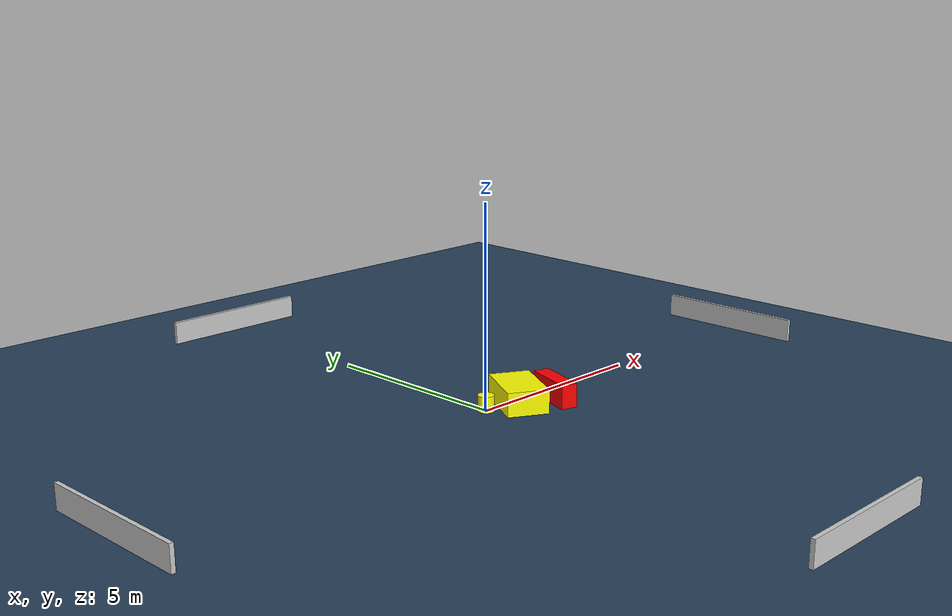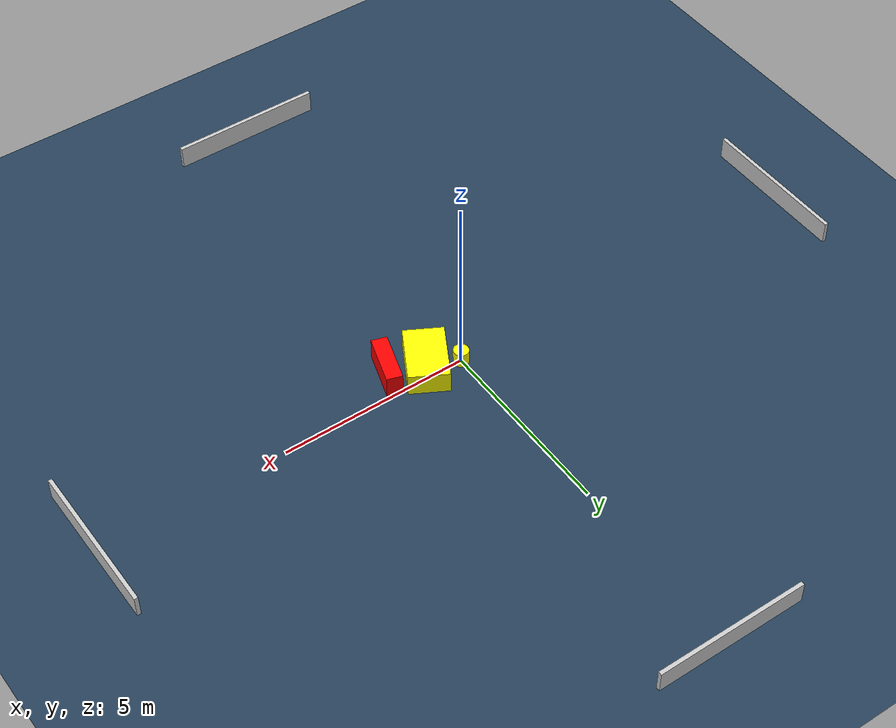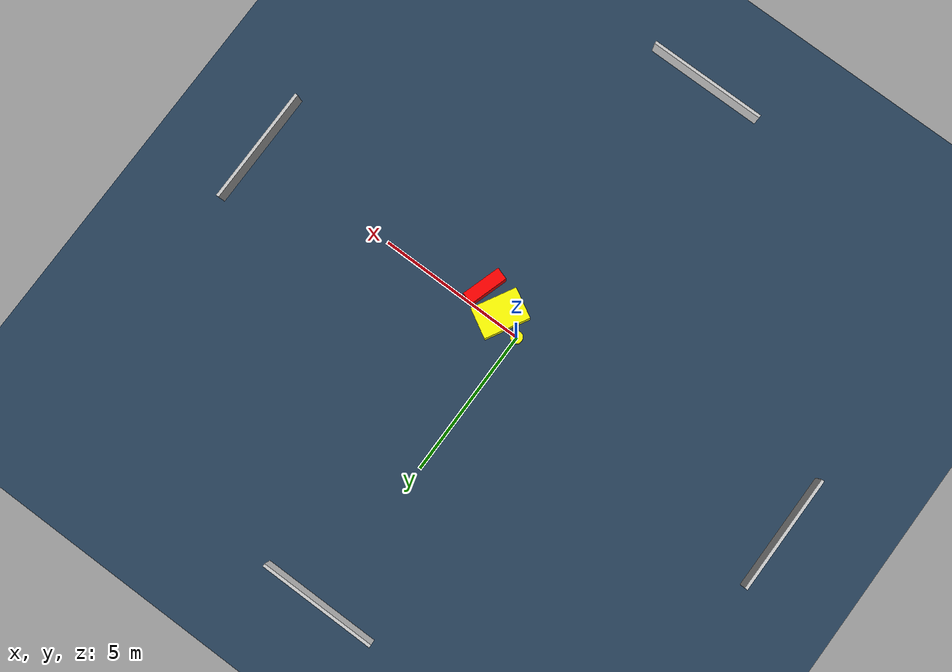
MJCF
<?xml version="1.0" ?>
<mujoco model="generated_environment">
  <option timestep="0.01" integrator="RK4" cone="elliptic"/>
  <default>
    <geom density="1"/>
  </default>
  <asset>
    <texture builtin="gradient" height="3072" name="skybox" rgb1="0.3 0.5 0.7" rgb2="0 0 0" type="skybox" width="512"/>
    <texture builtin="checker" height="300" name="groundplane" rgb1="0.2 0.3 0.4" rgb2="0.1 0.2 0.3" type="2d" width="300"/>
    <material name="groundplane" reflectance="0.2" texrepeat="5 5" texture="groundplane"/>
  </asset>
  <worldbody>
    <light dir="0 0 -1" directional="true" pos="0 0 1.5"/>
    <geom condim="3" friction="0.5 0.005 0.001" material="groundplane" name="floor" pos="0 0 0" size="0 0 0.05" type="plane"/>
    <body name="walls">
      <geom name="wall_1" condim="4" pos="-10.0 0.0 0.3" rgba="0.800000011920929 0.800000011920929 0.800000011920929 1.0" size="0.05 2.0 0.3" type="box"/>
      <geom name="wall_2" condim="4" pos="10.0 0.0 0.3" rgba="0.800000011920929 0.800000011920929 0.800000011920929 1.0" size="0.05 2.0 0.3" type="box"/>
      <geom name="wall_3" condim="4" pos="0.0 -10.0 0.3" rgba="0.800000011920929 0.800000011920929 0.800000011920929 1.0" size="2.0 0.05 0.3" type="box"/>
      <geom name="wall_4" condim="4" pos="0.0 10.0 0.3" rgba="0.800000011920929 0.800000011920929 0.800000011920929 1.0" size="2.0 0.05 0.3" type="box"/>
    </body>
    <body name="robot">
      <joint name="joint_x" type="slide" pos="0 0 0" axis="1 0 0"/>
      <joint name="joint_y" type="slide" pos="0 0 0" axis="0 1 0"/>
      <geom name="robot" type="cylinder" pos="0.0 0.0 0.2" size="0.2 0.2 0.0" mass="5.0" friction="1.0 0.005 0.0001" condim="4" rgba="1.0 1.0 0.0 1.0"/>
    </body>
    <body name="obstacle_1_movable">
      <geom name="obstacle_1_movable" condim="4" pos="0.8270545047587877 -0.2834652163856546 0.3" euler="0 0 60.94762264934208" friction="0.0 0.005 0.001" rgba="1.0 1.0 0.0 1.0" size="0.7693232151821532 0.517730139231825 0.3" type="box" mass="0.1"/>
      <joint type="free"/>
    </body>
    <body name="obstacle_2_static">
      <geom name="obstacle_2_static" condim="4" pos="1.709130601029601 -0.6666112635174413 0.3" euler="0 0 72.64970742148611" friction="0.0 0.005 0.001" rgba="1.0 0.0 0.0 1.0" size="0.6637866946840896 0.2063554722955059 0.3" type="box"/>
    </body>
  </worldbody>
  <actuator>
    <motor name="actuator_x" joint="joint_x" gear="1" ctrlrange="-1 1"/>
    <motor name="actuator_y" joint="joint_y" gear="1" ctrlrange="-1 1"/>
  </actuator>
</mujoco>
